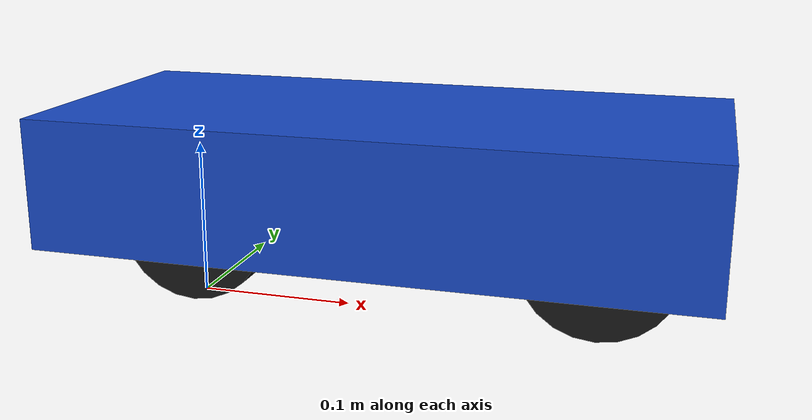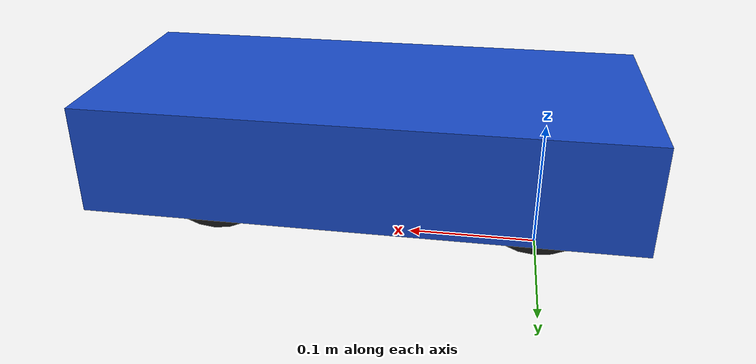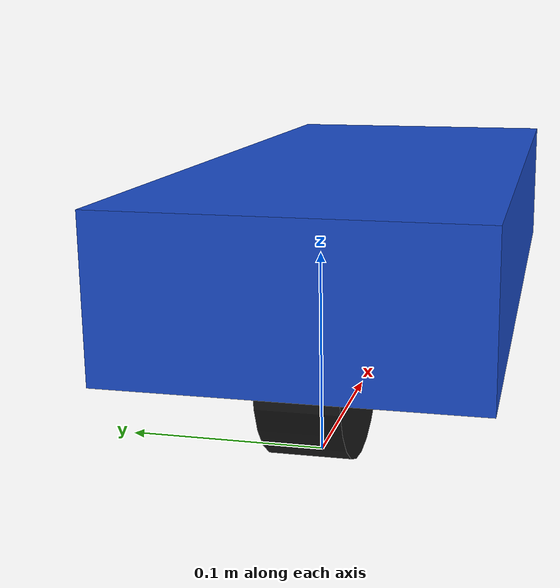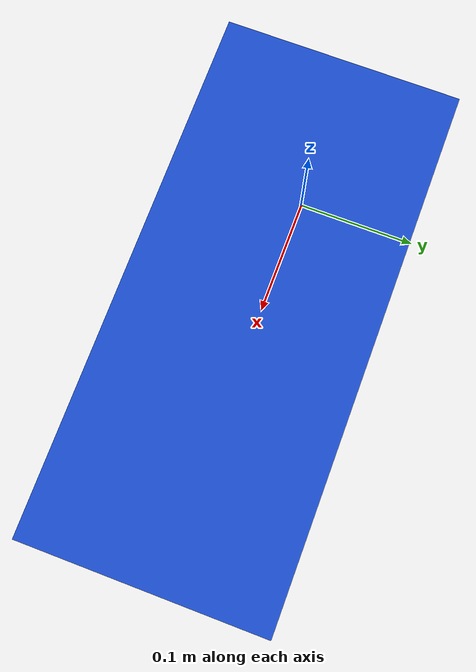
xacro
<?xml version="1.0"?>
<robot name="rc_vehicle" xmlns:xacro="http://www.ros.org/wiki/xacro">

  <!-- ===== Arguments ===== -->
  <xacro:arg name="use_mock_hardware" default="false"/>
  <xacro:arg name="use_mock_gpio" default="false"/>
  <xacro:arg name="hardware_plugin" default="rc_vehicle_driver/RcVehicleDriverHardware"/>

  <!-- Vehicle geometry [m] -->
  <xacro:arg name="wheelbase" default="0.26"/>
  <xacro:arg name="wheel_radius" default="0.05"/>
  <xacro:arg name="wheel_width" default="0.04"/>
  <xacro:arg name="chassis_length" default="0.40"/>
  <xacro:arg name="chassis_width" default="0.18"/>
  <xacro:arg name="chassis_height" default="0.08"/>

  <!-- Joint limits -->
  <xacro:arg name="max_steering_angle" default="0.5"/>      <!-- [rad] -->
  <xacro:arg name="max_traction_velocity" default="60.0"/>  <!-- [rad/s] -->

  <xacro:property name="wheelbase" value="$(arg wheelbase)"/>
  <xacro:property name="wheel_radius" value="$(arg wheel_radius)"/>
  <xacro:property name="wheel_width" value="$(arg wheel_width)"/>
  <xacro:property name="chassis_length" value="$(arg chassis_length)"/>
  <xacro:property name="chassis_width" value="$(arg chassis_width)"/>
  <xacro:property name="chassis_height" value="$(arg chassis_height)"/>
  <xacro:property name="max_steering_angle" value="$(arg max_steering_angle)"/>
  <xacro:property name="max_traction_velocity" value="$(arg max_traction_velocity)"/>

  <!-- Masses [kg] (placeholders) -->
  <xacro:property name="chassis_mass" value="1.2"/>
  <xacro:property name="wheel_mass" value="0.1"/>
  <xacro:property name="knuckle_mass" value="0.01"/>

  <xacro:include filename="$(find rc_vehicle_description)/ros2_control/rc_vehicle.ros2_control.xacro"/>

  <!-- ===== Materials ===== -->
  <material name="blue">
    <color rgba="0.1 0.3 0.8 1.0"/>
  </material>
  <material name="black">
    <color rgba="0.1 0.1 0.1 1.0"/>
  </material>

  <!-- ===== Inertia helpers ===== -->
  <xacro:macro name="box_inertial" params="mass x y z">
    <inertial>
      <mass value="${mass}"/>
      <inertia ixx="${mass * (y*y + z*z) / 12.0}" ixy="0.0" ixz="0.0"
               iyy="${mass * (x*x + z*z) / 12.0}" iyz="0.0"
               izz="${mass * (x*x + y*y) / 12.0}"/>
    </inertial>
  </xacro:macro>

  <!-- Cylinder whose axis is aligned with the link's y-axis -->
  <xacro:macro name="wheel_inertial" params="mass radius width">
    <inertial>
      <mass value="${mass}"/>
      <inertia ixx="${mass * (3*radius*radius + width*width) / 12.0}" ixy="0.0" ixz="0.0"
               iyy="${mass * radius * radius / 2.0}" iyz="0.0"
               izz="${mass * (3*radius*radius + width*width) / 12.0}"/>
    </inertial>
  </xacro:macro>

  <xacro:macro name="wheel_link" params="name">
    <link name="${name}">
      <visual>
        <origin xyz="0 0 0" rpy="${pi/2} 0 0"/>
        <geometry>
          <cylinder radius="${wheel_radius}" length="${wheel_width}"/>
        </geometry>
        <material name="black"/>
      </visual>
      <collision>
        <origin xyz="0 0 0" rpy="${pi/2} 0 0"/>
        <geometry>
          <cylinder radius="${wheel_radius}" length="${wheel_width}"/>
        </geometry>
      </collision>
      <xacro:wheel_inertial mass="${wheel_mass}" radius="${wheel_radius}" width="${wheel_width}"/>
    </link>
  </xacro:macro>

  <!-- ===== Links / joints ===== -->
  <link name="base_footprint"/>

  <joint name="base_footprint_joint" type="fixed">
    <parent link="base_footprint"/>
    <child link="base_link"/>
    <origin xyz="0 0 ${wheel_radius}" rpy="0 0 0"/>
  </joint>

  <link name="base_link"/>

  <joint name="chassis_joint" type="fixed">
    <parent link="base_link"/>
    <child link="chassis_link"/>
    <origin xyz="${wheelbase / 2.0} 0 ${chassis_height / 2.0}" rpy="0 0 0"/>
  </joint>

  <link name="chassis_link">
    <visual>
      <geometry>
        <box size="${chassis_length} ${chassis_width} ${chassis_height}"/>
      </geometry>
      <material name="blue"/>
    </visual>
    <collision>
      <geometry>
        <box size="${chassis_length} ${chassis_width} ${chassis_height}"/>
      </geometry>
    </collision>
    <xacro:box_inertial mass="${chassis_mass}" x="${chassis_length}" y="${chassis_width}" z="${chassis_height}"/>
  </link>

  <!-- Virtual rear traction joint (single ESC/drive command) -->
  <joint name="traction_joint" type="continuous">
    <parent link="base_link"/>
    <child link="rear_wheel_link"/>
    <origin xyz="0 0 0" rpy="0 0 0"/>
    <axis xyz="0 1 0"/>
    <limit effort="10.0" velocity="${max_traction_velocity}"/>
  </joint>

  <xacro:wheel_link name="rear_wheel_link"/>

  <!-- Virtual front steering joint (single steering-servo command) -->
  <joint name="steering_joint" type="revolute">
    <parent link="base_link"/>
    <child link="front_steering_link"/>
    <origin xyz="${wheelbase} 0 0" rpy="0 0 0"/>
    <axis xyz="0 0 1"/>
    <limit lower="${-max_steering_angle}" upper="${max_steering_angle}" effort="1.0" velocity="5.0"/>
  </joint>

  <link name="front_steering_link">
    <inertial>
      <mass value="${knuckle_mass}"/>
      <inertia ixx="1e-6" ixy="0.0" ixz="0.0" iyy="1e-6" iyz="0.0" izz="1e-6"/>
    </inertial>
  </link>

  <!--
    The front wheel is fixed to the steering knuckle so that its TF is always
    available without an extra passive joint state (the front wheel is not
    part of the ros2_control interface).
  -->
  <joint name="front_wheel_joint" type="fixed">
    <parent link="front_steering_link"/>
    <child link="front_wheel_link"/>
    <origin xyz="0 0 0" rpy="0 0 0"/>
  </joint>

  <xacro:wheel_link name="front_wheel_link"/>

  <!-- ===== ros2_control ===== -->
  <xacro:rc_vehicle_ros2_control
    name="RcVehicleSystem"
    hardware_plugin="$(arg hardware_plugin)"
    use_mock_hardware="$(arg use_mock_hardware)"
    use_mock_gpio="$(arg use_mock_gpio)"
    max_steering_angle="${max_steering_angle}"
    max_traction_velocity="${max_traction_velocity}"/>

</robot>
